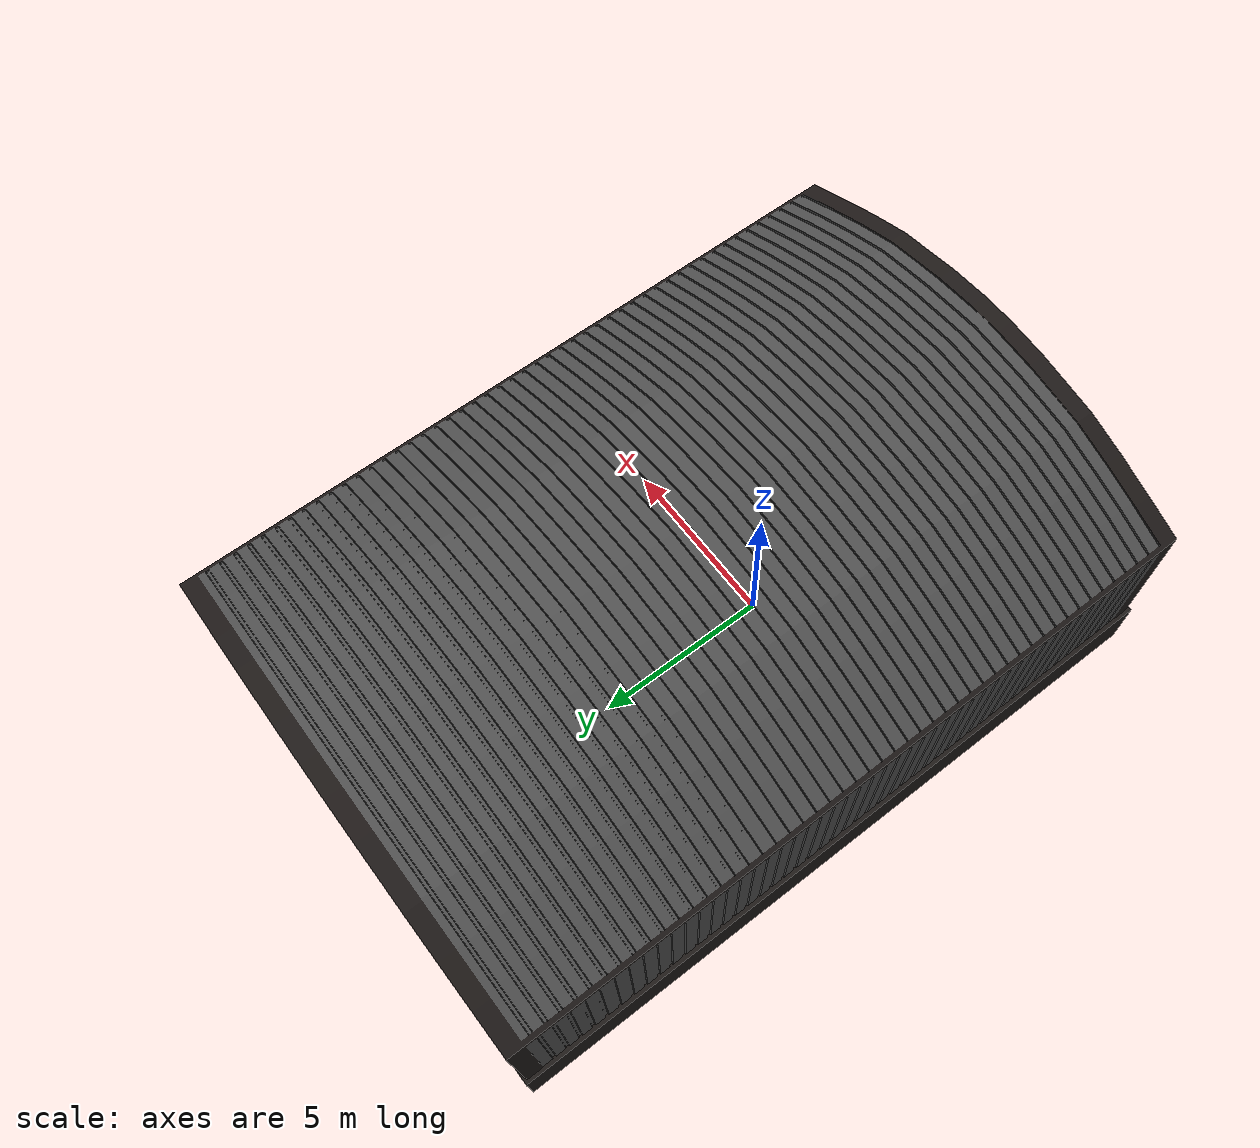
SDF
<?xml version='1.0'?>
<sdf version="1.4">
<model name="hangar">
  <static>true</static>
    <link name="hangar">
    	<pose>0 0 0 0 0 0</pose>
        <collision name="collision">
            <geometry>
	       <plane>
		   <size>100 100</size>
    	       </plane>
            </geometry>
        </collision>
        <visual name="visual">
            <geometry>
               <mesh>
                  <uri>model://hangar/meshes/hangar.dae</uri>
               </mesh>
            </geometry>
        </visual>
     </link>

     <link name="roof">
	<collision name="collision2">
            <pose>0 2 6 0 1.57 0</pose>
            <geometry>
	       <box>
		   <size>0.1 20 14</size>
    	       </box>
            </geometry>
        </collision>
     </link>

     <link name="hangar_wall5">
	<collision name="collision2">
            <pose>-4.9 -7.0 3 0 0 1.85</pose>
            <geometry>
	       <box>
		   <size>0.1 4 6</size>
    	       </box>
            </geometry>
        </collision>
     </link>

     <link name="hangar_wall4">
	<collision name="collision2">
            <pose>4.9 -7.0 3 0 0 1.35</pose>
            <geometry>
	       <box>
		   <size>0.1 4 6</size>
    	       </box>
            </geometry>
        </collision>
     </link>

     <link name="hangar_wall3">
	<collision name="collision2">
            <pose>0 12.3 3 0 0 1.57</pose>
            <geometry>
	       <box>
		   <size>0.1 13.5 6</size>
    	       </box>
            </geometry>
        </collision>
     </link>

     <link name="hangar_wall2">
	<collision name="collision2">
            <pose>-6.8 2.5 3 0 0 0 </pose>
            <geometry>
	       <box>
		   <size>0.1 20 6</size>
    	       </box>
            </geometry>
        </collision>
     </link>

     <link name="hangar_wall1">
	<collision name="collision2">
            <pose>6.8 2.5 3 0 0 0 </pose>
            <geometry>
	       <box>
		   <size>0.1 20 6</size>
    	       </box>
            </geometry>
        </collision>
     </link>
</model>
</sdf>
